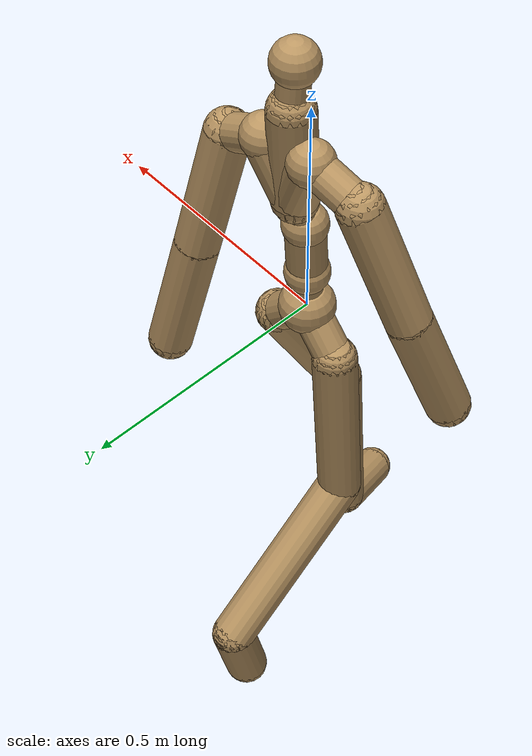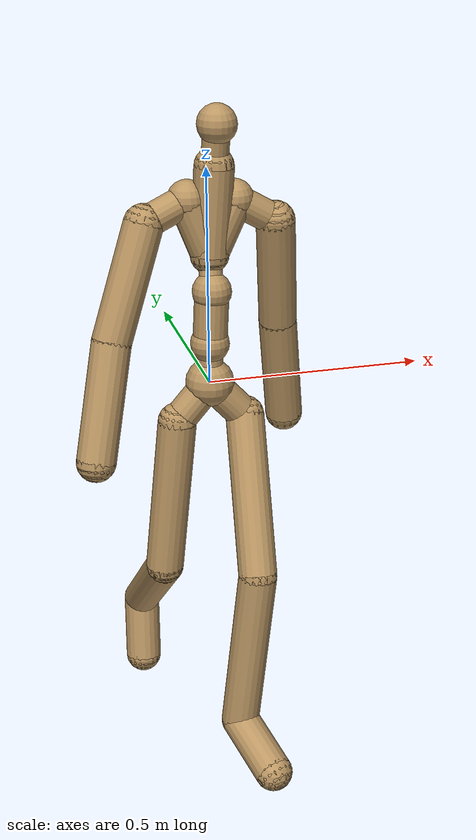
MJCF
<?xml version='1.0' encoding='utf-8'?>
<mujoco model="hymotion_human_22ball">
  <compiler angle="radian" coordinate="local" inertiafromgeom="true" />
  <option timestep="0.01" gravity="0 0 0" integrator="Euler" />
  <default>
    <joint damping="0.2" armature="0.01" limited="false" />
    <geom contype="1" conaffinity="1" condim="3" density="500" friction="0.8 0.1 0.1" rgba="0.72 0.58 0.38 1" />
  </default>
  <worldbody>
    <body name="pelvis" pos="0 0 0">
      <freejoint name="pelvis_free" />
      <geom name="pelvis_joint" type="sphere" size="0.056250" />
      <geom name="left_hip_bone" type="capsule" fromto="0 0 0 0.08237194 -0.00024669 -0.08999128" size="0.039040" />
      <body name="left_hip" pos="0.08237194 -0.00024669 -0.08999128">
        <joint name="left_hip_ball" type="ball" pos="0 0 0" />
        <geom name="left_hip_joint" type="sphere" size="0.045000" />
        <geom name="left_knee_bone" type="capsule" fromto="0 0 0 -0.01531851 -0.17047279 -0.33697560" size="0.045000" />
        <body name="left_knee" pos="-0.01531851 -0.17047279 -0.33697560">
          <joint name="left_knee_ball" type="ball" pos="0 0 0" />
          <geom name="left_knee_joint" type="sphere" size="0.045000" />
          <geom name="left_ankle_bone" type="capsule" fromto="0 0 0 -0.04207990 0.01217569 -0.39914015" size="0.045000" />
          <body name="left_ankle" pos="-0.04207990 0.01217569 -0.39914015">
            <joint name="left_ankle_ball" type="ball" pos="0 0 0" />
            <geom name="left_ankle_joint" type="sphere" size="0.045000" />
            <geom name="left_foot_bone" type="capsule" fromto="0 0 0 0.04597576 -0.13784495 -0.06737981" size="0.045000" />
            <body name="left_foot" pos="0.04597576 -0.13784495 -0.06737981">
              <joint name="left_foot_ball" type="ball" pos="0 0 0" />
              <geom name="left_foot_joint" type="sphere" size="0.045000" />
            </body>
          </body>
        </body>
      </body>
      <geom name="right_hip_bone" type="capsule" fromto="0 0 0 -0.07878167 -0.00024669 -0.08999128" size="0.038273" />
      <body name="right_hip" pos="-0.07878167 -0.00024669 -0.08999128">
        <joint name="right_hip_ball" type="ball" pos="0 0 0" />
        <geom name="right_hip_joint" type="sphere" size="0.045000" />
        <geom name="right_knee_bone" type="capsule" fromto="0 0 0 -0.03791992 0.00894620 -0.37593913" size="0.045000" />
        <body name="right_knee" pos="-0.03791992 0.00894620 -0.37593913">
          <joint name="right_knee_ball" type="ball" pos="0 0 0" />
          <geom name="right_knee_joint" type="sphere" size="0.045000" />
          <geom name="right_ankle_bone" type="capsule" fromto="0 0 0 -0.00462422 0.30724964 -0.25847283" size="0.045000" />
          <body name="right_ankle" pos="-0.00462422 0.30724964 -0.25847283">
            <joint name="right_ankle_ball" type="ball" pos="0 0 0" />
            <geom name="right_ankle_joint" type="sphere" size="0.045000" />
            <geom name="right_foot_bone" type="capsule" fromto="0 0 0 -0.00589420 -0.02961989 -0.15729897" size="0.045000" />
            <body name="right_foot" pos="-0.00589420 -0.02961989 -0.15729897">
              <joint name="right_foot_ball" type="ball" pos="0 0 0" />
              <geom name="right_foot_joint" type="sphere" size="0.045000" />
            </body>
          </body>
        </body>
      </body>
      <geom name="spine1_bone" type="capsule" fromto="0 0 0 0.00179501 -0.00000000 0.09425105" size="0.030166" />
      <body name="spine1" pos="0.00179501 -0.00000000 0.09425105">
        <joint name="spine1_ball" type="ball" pos="0 0 0" />
        <geom name="spine1_joint" type="sphere" size="0.045000" />
        <geom name="spine2_bone" type="capsule" fromto="0 0 0 0.00662035 0.00140835 0.12246174" size="0.039248" />
        <body name="spine2" pos="0.00662035 0.00140835 0.12246174">
          <joint name="spine2_ball" type="ball" pos="0 0 0" />
          <geom name="spine2_joint" type="sphere" size="0.045000" />
          <geom name="spine3_bone" type="capsule" fromto="0 0 0 0.00165654 0.02422525 0.08022702" size="0.026823" />
          <body name="spine3" pos="0.00165654 0.02422525 0.08022702">
            <joint name="spine3_ball" type="ball" pos="0 0 0" />
            <geom name="spine3_joint" type="sphere" size="0.045000" />
            <geom name="neck_bone" type="capsule" fromto="0 0 0 0.01322314 -0.00157244 0.19639434" size="0.045000" />
            <body name="neck" pos="0.01322314 -0.00157244 0.19639434">
              <joint name="neck_ball" type="ball" pos="0 0 0" />
              <geom name="neck_joint" type="sphere" size="0.045000" />
              <geom name="head_bone" type="capsule" fromto="0 0 0 0.00454371 -0.01187200 0.09480749" size="0.030610" />
              <body name="head" pos="0.00454371 -0.01187200 0.09480749">
                <joint name="head_ball" type="ball" pos="0 0 0" />
                <geom name="head_joint" type="sphere" size="0.045000" />
              </body>
            </body>
            <geom name="left_collar_bone" type="capsule" fromto="0 0 0 0.06154529 0.01620903 0.11704376" size="0.042633" />
            <body name="left_collar" pos="0.06154529 0.01620903 0.11704376">
              <joint name="left_collar_ball" type="ball" pos="0 0 0" />
              <geom name="left_collar_joint" type="sphere" size="0.045000" />
              <geom name="left_shoulder_bone" type="capsule" fromto="0 0 0 0.09587044 0.00024858 -0.05673751" size="0.035649" />
              <body name="left_shoulder" pos="0.09587044 0.00024858 -0.05673751">
                <joint name="left_shoulder_ball" type="ball" pos="0 0 0" />
                <geom name="left_shoulder_joint" type="sphere" size="0.045000" />
                <geom name="left_elbow_bone" type="capsule" fromto="0 0 0 0.02364181 0.06340005 -0.25999600" size="0.045000" />
                <body name="left_elbow" pos="0.02364181 0.06340005 -0.25999600">
                  <joint name="left_elbow_ball" type="ball" pos="0 0 0" />
                  <geom name="left_elbow_joint" type="sphere" size="0.045000" />
                  <geom name="left_wrist_bone" type="capsule" fromto="0 0 0 0.03214671 0.05537111 -0.26167622" size="0.045000" />
                  <body name="left_wrist" pos="0.03214671 0.05537111 -0.26167622">
                    <joint name="left_wrist_ball" type="ball" pos="0 0 0" />
                    <geom name="left_wrist_joint" type="sphere" size="0.045000" />
                  </body>
                </body>
              </body>
            </body>
            <geom name="right_collar_bone" type="capsule" fromto="0 0 0 -0.04728233 0.00790822 0.12430470" size="0.042633" />
            <body name="right_collar" pos="-0.04728233 0.00790822 0.12430470">
              <joint name="right_collar_ball" type="ball" pos="0 0 0" />
              <geom name="right_collar_joint" type="sphere" size="0.045000" />
              <geom name="right_shoulder_bone" type="capsule" fromto="0 0 0 -0.10168924 -0.01851043 -0.04155753" size="0.035649" />
              <body name="right_shoulder" pos="-0.10168924 -0.01851043 -0.04155753">
                <joint name="right_shoulder_ball" type="ball" pos="0 0 0" />
                <geom name="right_shoulder_joint" type="sphere" size="0.045000" />
                <geom name="right_elbow_bone" type="capsule" fromto="0 0 0 -0.08947552 -0.04594636 -0.24911742" size="0.045000" />
                <body name="right_elbow" pos="-0.08947552 -0.04594636 -0.24911742">
                  <joint name="right_elbow_ball" type="ball" pos="0 0 0" />
                  <geom name="right_elbow_joint" type="sphere" size="0.045000" />
                  <geom name="right_wrist_bone" type="capsule" fromto="0 0 0 -0.05773105 -0.07033674 -0.25356194" size="0.045000" />
                  <body name="right_wrist" pos="-0.05773105 -0.07033674 -0.25356194">
                    <joint name="right_wrist_ball" type="ball" pos="0 0 0" />
                    <geom name="right_wrist_joint" type="sphere" size="0.045000" />
                  </body>
                </body>
              </body>
            </body>
          </body>
        </body>
      </body>
    </body>
  </worldbody>
</mujoco>
